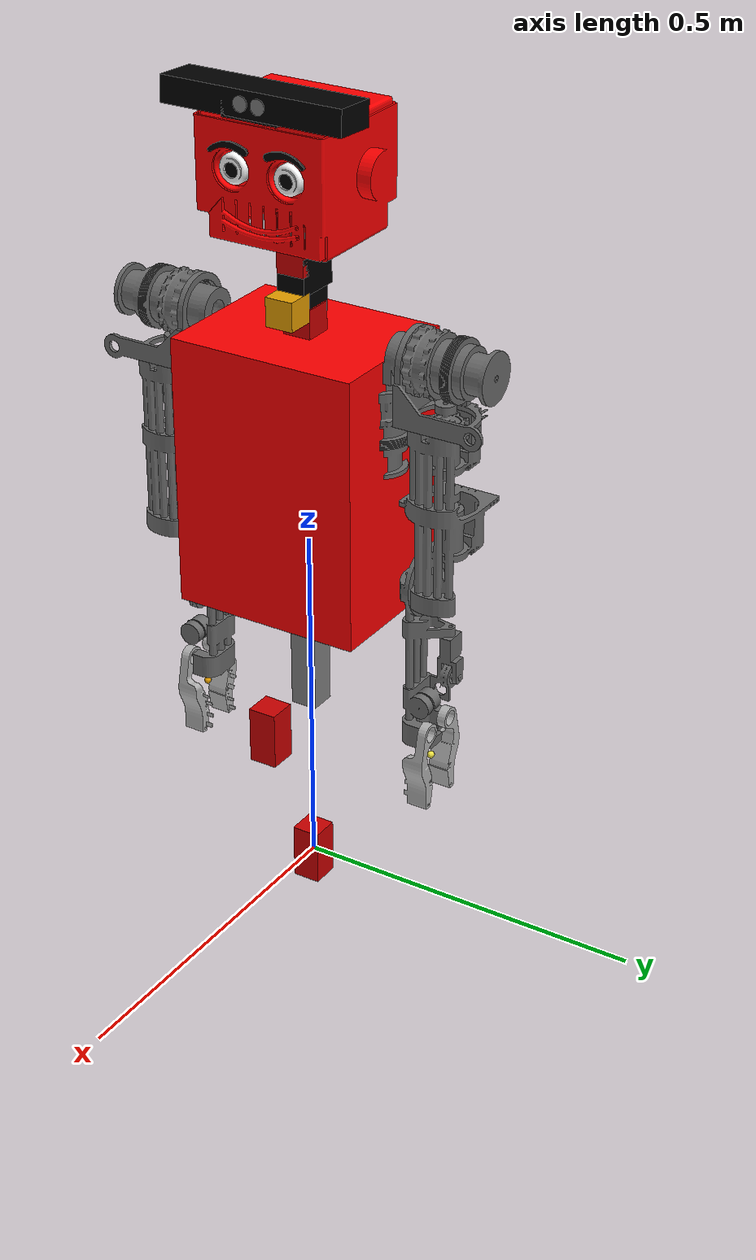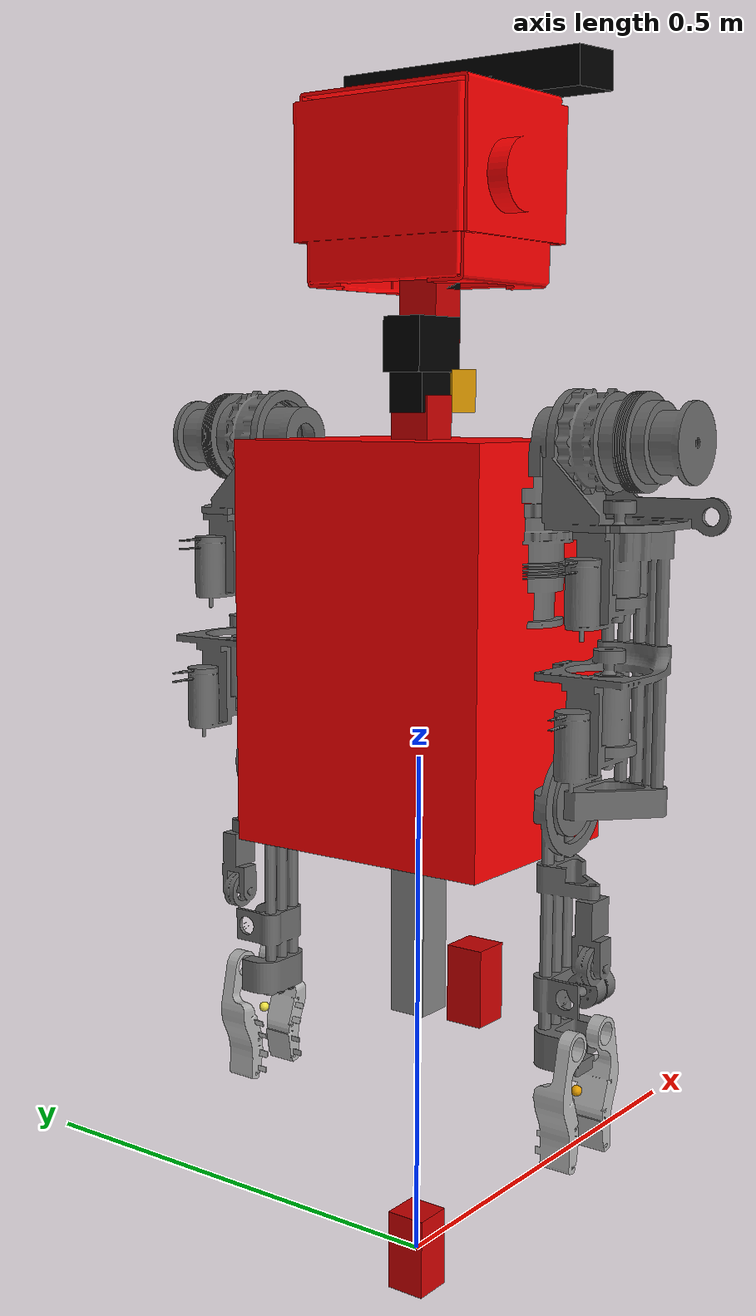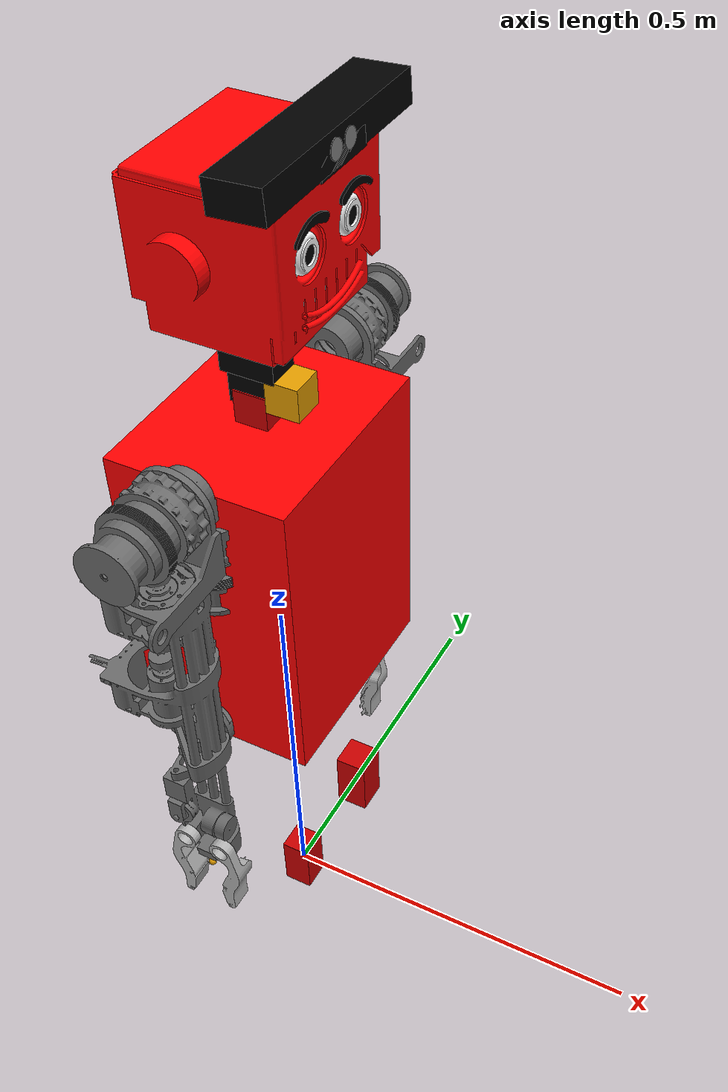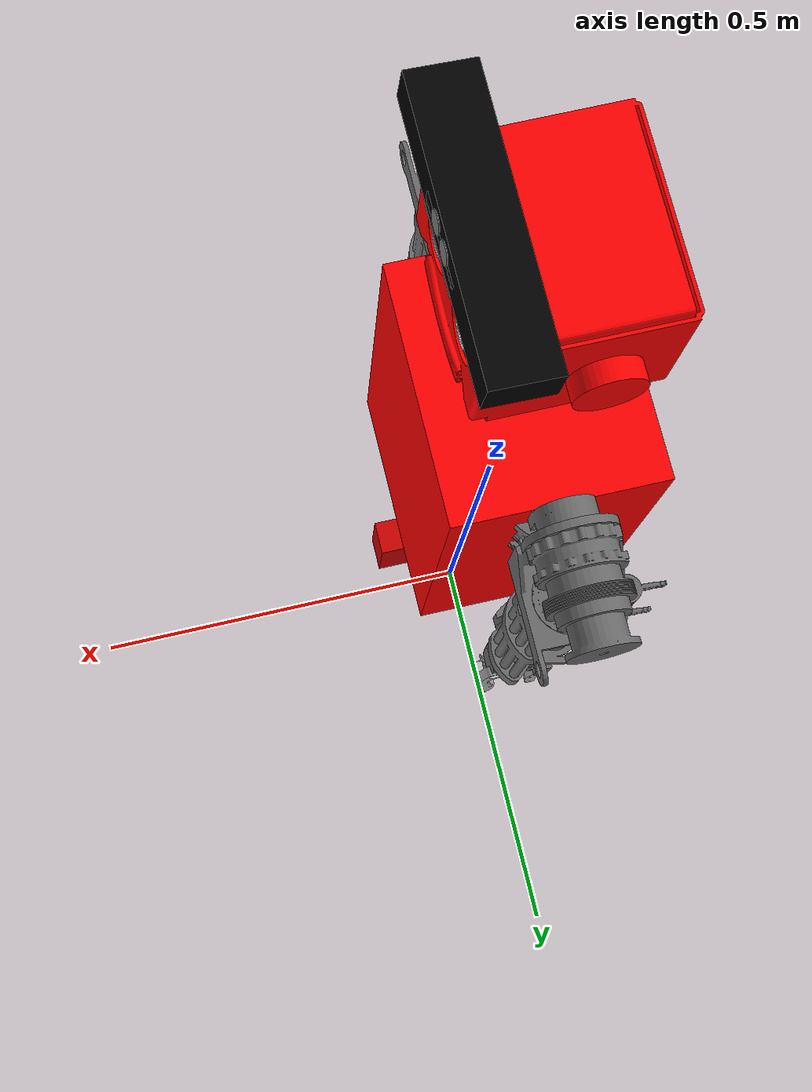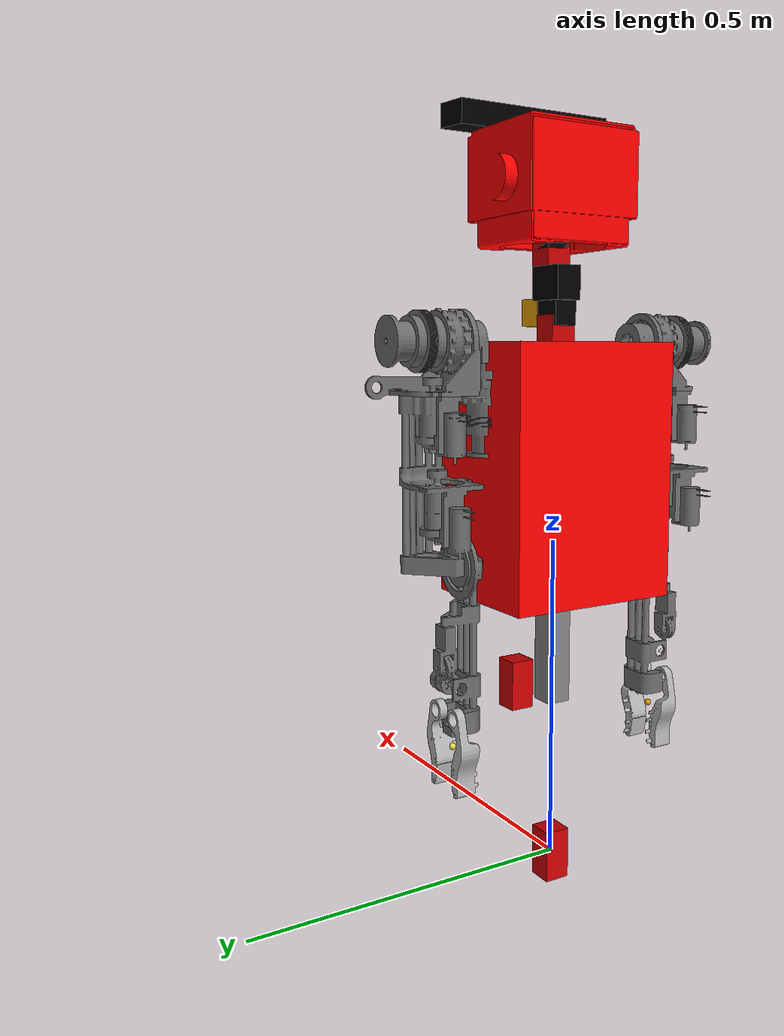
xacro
<?xml version="1.0"?>
<robot xmlns:xacro="http://www.ros.org/wiki/xacro"
       name="jn0" >

    <!-- Johnny-0 (the torso and arms) macro -->
    <xacro:include filename="$(find jn0_description)/robots/jn0.urdf.xacro" />

    <xacro:property name="base_height"  value="0.25" />

    <!-- Defines everything from base_link and up. -->
    <xacro:jn0 base_height="${base_height}" />

    <!-- Fixes the base_link to the world -->
    <link name="world" />
    <joint name="fixed" type="fixed">
      <parent link="world"/>
      <child link="base_link"/>
    </joint>

</robot>

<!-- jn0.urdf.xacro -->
<robot xmlns:xacro="http://www.ros.org/wiki/xacro"
       name="jn0" >

	<!-- The following included files set up definitions of parts of the robot body -->
	<xacro:include filename="$(find irl_common_description)/urdf/common.xacro" />

	<!-- Description files -->
	<xacro:include filename="$(find irl_common_description)/urdf/jn0_torso/box_torso.urdf.xacro" />
	<xacro:include filename="$(find irl_common_description)/urdf/jn0_arm/arm.urdf.xacro" />
	<xacro:include filename="$(find irl_common_description)/urdf/actuators/irl_ptu.urdf.xacro" />
	<xacro:include filename="$(find irl_common_description)/urdf/jn0_head/head.urdf.xacro" />
	<xacro:include filename="$(find irl_common_description)/urdf/sensors/kinect.urdf.xacro" />
	<xacro:include filename="$(find irl_common_description)/urdf/sensors/hokuyo_lx04_laser.urdf.xacro" />

	<!-- generic simulator_gazebo plugins for starting mechanism control, ros time, ros battery -->
	<xacro:include filename="$(find jn0_description)/gazebo/gazebo.urdf.xacro" />
	<!-- materials for visualization -->
	<!-- FIXME  Materials from azimut -->
	<xacro:include filename="$(find irl_common_description)/urdf/materials.urdf.xacro" />

	<!-- TODO screenshots in irl_common_description ? -->
	<!-- TODO ticket wg like robot package
		 {xxx}_common
		   {xxx}_description (urdf, robots, gazebo, meshes)
		   {xxx}_machine
		   {xxx}_msgs
		 -->

    <xacro:macro name="jn0" params="base_height">
        <link name="base_link">
            <visual>
              <origin xyz="0 0 0" rpy="0 0 0" />
              <geometry>
                <box size="0.04 0.04 0.08" />
              </geometry>
              <material name="Red" />
            </visual>
            <collision>
              <origin xyz="0 0 0" rpy="0 0 0" />
            <geometry>
              <box size="1.000 1.000 .001" />
            </geometry>
          </collision>
        </link>

        <xacro:box_torso
            name="torso"
            parent="base_link"
            xyz = "0 0 ${base_height}"
            height       = "0.55"
            stand_width  = "0.038"
            chest_width  = "0.270"
            chest_length = "0.21583"
            chest_height = "0.37921"
            />

        <xacro:irl_ptu
            name="neck"
            parent="torso_top_frame"
            offset_x="0"
            offset_y="0"
            offset_z="0.045"
        />

        <xacro:jn0_head
            name="head"
            parent="neck_top_frame"
            offset_x = "0"
            offset_y = "0"
            offset_z = "0.02"
            />

        <joint name="imv_camera_fixed_joint" type="fixed">
            <origin xyz="0.04 0.00 0.044" rpy="0 0 0"/>
            <parent link="torso_top_frame"/>
            <child  link="imv_camera_link"/>
        </joint>
        <link name="imv_camera_link">
            <inertial>
                <mass value="0.1"/>
                <origin xyz="0 0 0" rpy="0 0 0"/>
                <inertia ixx="0.0001" ixy="0.0" ixz="0.0" iyy="0.0001" iyz="0.0" izz="0.0001"/>
            </inertial>
            <visual>
                <origin xyz="0 0 0" rpy="0 0 0"/>
                <geometry>
                    <box size="0.04 0.04 0.04"/>
                </geometry>
            </visual>
            <collision>
                <origin xyz="0 0 0" rpy="0 0 0"/>
                <geometry>
                    <box size="0.04 0.04 0.04"/>
                </geometry>
            </collision>
        </link>

        <xacro:arm
            parent="torso_link"
            side="R"
            reflect="-1"
            />

        <xacro:arm
            parent="torso_link"
            side="L"
            reflect="1"
            />

        <xacro:kinect_static
            name="openni"
            parent="head_link"
            xyz="0.070 0 0.17" rpy="0 -0.051 0"
            angle="0.0"
            />

        <xacro:hokuyo_lx04_laser_v0
            name="base_laser"
            parent="base"
            ros_topic="base_scan"
            update_rate="20"
            min_angle="-1.57"
            max_angle="1.57" >
            <origin xyz="0.1 0.0 ${base_height}" rpy="0 0 0" />
        </xacro:hokuyo_lx04_laser_v0>

    </xacro:macro>
</robot>

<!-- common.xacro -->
<robot xmlns:xacro="http://www.ros.org/wiki/xacro">

  <xacro:property name="M_PI" value="3.1415926535897931" />
  <xacro:property name="VELOCITY_LIMIT_SCALE" value="0.6" />

</robot>

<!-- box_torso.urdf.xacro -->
<robot xmlns:xacro="http://www.ros.org/wiki/xacro">

	<xacro:include filename="$(find irl_common_description)/urdf/common_geometry.xacro" />

	<xacro:macro name="box_torso" params="name parent xyz height stand_width chest_width chest_height chest_length">

		<!-- "Stand", the bar supporting the torso -->

		<joint name="${name}_stand_fixed_joint" type="fixed">
			<parent link="${parent}"/>
			<child link="${name}_stand_link"/>
			<origin xyz="${xyz}" rpy="0 0 0" />
		</joint>

		<xacro:simple_box
			name = "${name}_stand_link"
			lwh  = "${stand_width} ${stand_width} ${height - chest_height}"
			xyz  = "0 0 ${(height - chest_height) / 2}"
			rpy  = "0 0 0"
			mass = "0.5"
			rviz_rgba = "0.5 0.5 0.5 1"
			material  = "Gazebo/Grey"
		/>

		<joint name="${name}_fixed_joint" type="fixed">
			<parent link="${parent}"/>
			<child link="${name}_link"/>
			<origin xyz="${xyz}" rpy="0 0 0" />
		</joint>

		<!-- Chest represented by a box -->

		<xacro:simple_box
			name = "${name}_link"
			lwh  = "${chest_length} ${chest_width} ${chest_height}"
			xyz  = "0 0 ${height - chest_height/2}"
			rpy  = "0 0 0"
			mass = "0.5"
			rviz_rgba = "1 0 0 1"
			material  = "Gazebo/Red"
			/>

		<joint name="${name}_top_frame_fixed" type="fixed">
			<parent link="${name}_link"/>
			<child link="${name}_top_frame"/>
			<origin xyz="0 0 ${height}" rpy="0 0 0" />
		</joint>

		<link name="${name}_top_frame">
            <inertial>
                <mass value="0.001" />
                <origin xyz="0 0 0" rpy="0 0 0" />
                <inertia ixx="0.0001" ixy="0" ixz="0" iyy="0.000001" iyz="0" izz="0.0001" />
            </inertial>
            <visual>
              <origin xyz="0 0 0" rpy="0 0 0" />
              <geometry>
                <box size="0.04 0.04 0.08" />
              </geometry>
              <material name="Red" />
            </visual>
            <collision>
              <origin xyz="0 0 0" rpy="0 0 0" />
              <geometry>
                <box size=".001 .001 .001" />
              </geometry>
            </collision>
        </link>

        <!-- IMU attached to the frame -->
        <joint name="${name}_imu_fixed" type="fixed">
            <parent link="${name}_top_frame"/>
            <child link="${name}_imu_link"/>
            <origin xyz="0.065 0.0 -0.12" rpy="0 0 -${M_PI/2}"/>
        </joint>
        <link name="${name}_imu_link">
            <visual>
                <origin xyz="0 0 0" rpy="0 0 0"/>
                <geometry>
                    <box size="0.02 0.02 0.02"/>
                </geometry>
            </visual>
        </link>

	</xacro:macro>

</robot>

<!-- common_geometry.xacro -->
<!-- XML namespaces -->
<robot xmlns:xacro="http://www.ros.org/wiki/xacro"
	>

	<!-- TODO check simple_inertial and simple gazebo -->

	<xacro:macro name="simple_inertial" params="mass">
		<inertial>
			<mass value="${mass}" />
			<inertia
				ixx="0.001" ixy="0.0" ixz="0.0"
				iyy="0.001" iyz="0.0"
				izz="0.001" />
			</inertial>
	</xacro:macro>

	<xacro:macro name="simple_gazebo" params="name material">
		<gazebo reference="${name}">
			<material>${material}</material>
			<selfCollide>false</selfCollide>
			<turnGravityOff>true</turnGravityOff>
		</gazebo>
	</xacro:macro>

	<xacro:macro name="simple_color" params="name rgba">
		<material name="${}">
			<color rgba="0.9 0.9 0.9 1.0"/>
		</material>
	</xacro:macro>

	<!-- Generic shape -->

	<xacro:macro name="simple_shape" params="name xyz rpy mass rviz_rgba material *shape">
		<link name="${name}">
			<visual>
				<origin xyz="${xyz}" rpy="${rpy}" />
				<geometry>
					<xacro:insert_block name="shape" />
				</geometry>
				<material name="${name}_color">
					<color rgba="${rviz_rgba}"/>
				</material>
			</visual>
			<collision>
				<origin xyz="${xyz}" rpy="${rpy}" />
				<geometry>
					<xacro:insert_block name="shape" />
				</geometry>
			</collision>
			<xacro:simple_inertial mass="${mass}" />
		</link>
		<xacro:simple_gazebo name="${name}" material="${material}" />
	</xacro:macro>

	<!-- Shapes specializations -->

	<xacro:macro name="simple_box" params="lwh name xyz rpy mass rviz_rgba material">
		<xacro:simple_shape
			name="${name}" xyz="${xyz}" rpy="${rpy}"
			mass="${mass}" rviz_rgba="${rviz_rgba}" material="${material}">
			<box size="${lwh}" />
		</xacro:simple_shape>
	</xacro:macro>

	<xacro:macro name="simple_cylinder" params="radius length name xyz rpy mass rviz_rgba material">
		<xacro:simple_shape
			name="${name}" xyz="${xyz}" rpy="${rpy}"
			mass="${mass}" rviz_rgba="${rviz_rgba}" material="${material}">
			<cylinder radius="${radius}" length="${length}" />
		</xacro:simple_shape>
	</xacro:macro>

	<xacro:macro name="simple_sphere" params="radius name xyz rpy mass rviz_rgba material">
		<xacro:simple_shape
			name="${name}" xyz="${xyz}" rpy="${rpy}"
			mass="${mass}" rviz_rgba="${rviz_rgba}" material="${material}">
			<sphere radius="${radius}" />
		</xacro:simple_shape>
	</xacro:macro>

</robot>

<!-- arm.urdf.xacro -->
<robot xmlns:xacro="http://www.ros.org/wiki/xacro"
	   name="arm" >

	<xacro:include filename="$(find irl_common_description)/urdf/jn0_arm/shoulder/shoulder.urdf.xacro" />
	<xacro:include filename="$(find irl_common_description)/urdf/jn0_arm/upper_arm/upper_arm.urdf.xacro" />
	<xacro:include filename="$(find irl_common_description)/urdf/jn0_arm/forearm/forearm.urdf.xacro" />
	<xacro:include filename="$(find irl_common_description)/urdf/jn0_arm/gripper/gripper.urdf.xacro" />

	<xacro:macro name="arm" params="side reflect parent">

		<xacro:johnny_0_shoulder side="${side}" reflect="${reflect}" parent="${parent}">
			<origin xyz="0 ${reflect*0.11430004} 0.55" rpy="0 0 0" />
		</xacro:johnny_0_shoulder>

		<xacro:johnny_0_upper_arm side="${side}" reflect="${reflect}" parent="${side}_shoulder_tilt_link">
			<origin xyz="0 0.31623 0" rpy="${M_PI/2} 0 0"/>
		</xacro:johnny_0_upper_arm>

		<xacro:johnny_0_forearm side="${side}" reflect="${reflect}" parent="${side}_upper_arm_link">
			<origin xyz="-0.0127 ${-reflect*0.031115} 0" rpy="${-M_PI/2} 0 0" />
		</xacro:johnny_0_forearm>

		<xacro:johnny_0_gripper side="${side}" reflect="${reflect}" parent="${side}_forearm_link">
			<!--origin xyz="0 0 0" rpy="0 0 0" /-->
		</xacro:johnny_0_gripper>

	</xacro:macro>
</robot>
<!--/(irl_common_description)-->

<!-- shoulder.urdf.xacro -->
<!-- XML namespaces -->
<robot xmlns:xacro="http://www.ros.org/wiki/xacro">

	<!-- Things that are needed only for Gazebo (not the physical robot).  These include
	sensor and controller plugin specifications -->
	<xacro:include filename="$(find irl_common_description)/urdf/jn0_arm/shoulder/shoulder.gazebo.xacro" />
	<xacro:include filename="$(find irl_common_description)/urdf/jn0_arm/shoulder/shoulder.transmission.xacro" />
	<xacro:include filename="$(find irl_common_description)/urdf/common.xacro" />

	<!-- ============================   Shoulder   ============================ -->

	<xacro:macro name="johnny_0_shoulder" params="side parent reflect *origin">

		<!-- Shoulder fixed joint -->

		<joint name="${side}_shoulder_fixed_joint" type="fixed">
			<xacro:insert_block name="origin" />
			<parent link="${parent}"/>
			<child link="${side}_shoulder_fixed_link"/>
		</joint>

		<!-- Shoulder fixed link -->

		<link name="${side}_shoulder_fixed_link">
			<inertial>
				<mass value="1.19220892" />
				<origin xyz="-0.00000272 -0.01235088 -0.09031596" rpy="0 0 0"/>
				<inertia  	ixx="0.00337306" 	ixy="0.00000002"  	ixz="0.0"
										iyy="0.00266910" 	iyz="-0.00086743"
														izz="0.00211447" />
			</inertial>

			<visual>
				<origin xyz="0 0 0" rpy="0 0 0" />
				<geometry name="${side}_shoulder_fixed_link_visual_geom">
					<mesh filename="package://irl_common_description/meshes/jn0_arm/shoulder/${side}_shoulder_fixed_link.dae"  />
				</geometry>
			</visual>

			<collision>
				<origin xyz="0 0 0" rpy="0 0 0 " />
				<geometry name="${side}_shoulder_fixed_link_collision_geom">
					<mesh filename="package://irl_common_description/meshes/jn0_arm/shoulder/${side}_shoulder_fixed_link.stl"  />
				</geometry>
			</collision>
		</link>

		<!-- Shoulder revolute joint - axis 1 : pan -->

		<joint name="${side}_shoulder_pan_joint" type="revolute">
		<!--joint name="${side}_shoulder_pan_joint" type="continuous"-->
		<!--joint name="${side}_shoulder_pan_joint" type="fixed"-->
			<axis xyz="0 0 1" />
			<origin xyz="0 0 0" rpy="0 0 0" />
			<parent link="${side}_shoulder_fixed_link"/>
			<child link="${side}_shoulder_pan_link"/>

			<!-- This parameters have to be modified -->
			<limit effort="10" velocity="2.0" lower="${-M_PI/2}" upper="${M_PI/2}" />
            <dynamics damping="0.1"/>
			<!--safety_controller k_position="100" k_velocity="10" soft_lower_limit="${-M_PI/2+0.15}" soft_upper_limit="${M_PI/2-0.15}"  /-->
		</joint>

		<!-- Shoulder link - First mobile part of the shoulder (pan) -->

		<link name="${side}_shoulder_pan_link">
			<inertial>
				<mass value="1.5029103" />
				<origin xyz="-0.00000458 0.03120604 -0.02992782" rpy="0 0 0"/>
				<inertia  	ixx="0.00431624" 	ixy="0.00000015"  	ixz="-0.00000011"
										iyy="0.00240441" 	iyz="0.00139880"
														izz="0.00251981" />
			</inertial>

			<visual>
				<origin xyz="0 0 0" rpy="0 0 0"/>
				<geometry name="${side}_shoulder_pan_link_visual_geom">
					<mesh filename="package://irl_common_description/meshes/jn0_arm/shoulder/${side}_shoulder_pan_link.dae"  />
				</geometry>
			</visual>

			<collision>
				<origin xyz="0 0 0" rpy="0 0 0"/>
				<geometry name="${side}_shoulder_pan_link_collision_geom">
					<mesh filename="package://irl_common_description/meshes/jn0_arm/shoulder/${side}_shoulder_pan_link.stl"  />
				</geometry>
			</collision>
		</link>

		<!-- Shoulder revolute joint - axis 2 : tilt -->

		<joint name="${side}_shoulder_tilt_joint" type="revolute">
			<axis xyz="0 0 1" />
			<origin xyz="0 ${reflect*0.09471141} 0" rpy="${-M_PI/2} 0 0"/>
			<parent link="${side}_shoulder_pan_link"/>
			<child link="${side}_shoulder_tilt_link"/>

			<!-- This parameters have to be modified -->
			<limit effort="20" velocity="1.0" lower="${-M_PI}" upper="${M_PI/2}" />
            <dynamics damping="0.1"/>
		</joint>

		<!-- Shoulder link -->
		<link name="${side}_shoulder_tilt_link">
			<inertial>
				<mass value="1.77083411" />
				<origin xyz="-0.00690346 0.03925534 0.00828557" rpy="0 0 0"/>
				<inertia  	ixx="0.00639093" 	ixy="-0.00121012"  ixz="0.00025902"
										iyy="0.00353925" 	iyz="-0.00029889"
														izz="0.00626044" />
			</inertial>

			<visual>
				<origin xyz="0 0 0" rpy="0 0 0"/>
				<geometry name="${side}_shoulder_tilt_link_visual_geom">
					<mesh filename="package://irl_common_description/meshes/jn0_arm/shoulder/${side}_shoulder_tilt_link.dae"  />
				</geometry>
			</visual>

			<collision>
				<origin xyz="0 0 0" rpy="0 0 0"/>
				<geometry name="${side}_shoulder_tilt_link_collision_geom">
					<mesh filename="package://irl_common_description/meshes/jn0_arm/shoulder/${side}_shoulder_tilt_link.stl"  />
				</geometry>
			</collision>
		</link>

		<!-- extensions -->

		<xacro:johnny_0_shoulder_transmission reflect="${reflect}" side="${side}" />

	</xacro:macro>

</robot>

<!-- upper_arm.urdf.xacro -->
<!-- XML namespaces -->
<robot xmlns:xacro="http://www.ros.org/wiki/xacro">

	<!-- Things that are needed only for Gazebo (not the physical robot).  These include
	sensor and controller plugin specifications -->
	<xacro:include filename="$(find irl_common_description)/urdf/jn0_arm/upper_arm/upper_arm.gazebo.xacro" />
	<xacro:include filename="$(find irl_common_description)/urdf/jn0_arm/upper_arm/upper_arm.transmission.xacro" />
	<xacro:include filename="$(find irl_common_description)/urdf/common.xacro" />

	<!-- ============================   Upper arm   ============================ -->

	<xacro:macro name="johnny_0_upper_arm" params="side parent reflect *origin">

		<!-- Shoulder revolute joint - axis 3 : roll -->

		<joint name="${side}_shoulder_roll_joint" type="revolute">
			<axis xyz="0 0 1"/>
			<xacro:insert_block name="origin" />

			<parent link="${parent}"/>
			<child link="${side}_upper_arm_link"/>

			<!-- This parameters have to be modified -->
			<limit effort="10" velocity="2.0" lower="${-M_PI/2}" upper="${M_PI/2}"/>
            <dynamics damping="0.1"/>
		</joint>

		<!-- Upper arm link -->

		<link name="${side}_upper_arm_link">
			<inertial>
				<mass value="3.18827858" />
				<origin xyz="0.01378839 -0.00550664 0.10178050" rpy="0 0 0"/>
				<inertia  	ixx="0.01926870" 	ixy="0.00025868"  	ixz="-0.00128573"
										iyy="0.01935202" 	iyz="0.00117889"
														izz="0.00721747" />
			</inertial>

			<visual>
				<origin xyz="0 0 0" rpy="${M_PI} 0 0"/>
				<geometry name="${side}_upper_arm_link_visual_geom">
					<mesh filename="package://irl_common_description/meshes/jn0_arm/upper_arm/${side}_upper_arm_link.dae"  />
				</geometry>
			</visual>

			<collision>
				<origin xyz="0 0 0" rpy="0 0 0"/>
				<geometry name="${side}_upper_arm_link_collision_geom">
					<mesh filename="package://irl_common_description/meshes/jn0_arm/upper_arm/${side}_upper_arm_link.stl"  />
				</geometry>
			</collision>
		</link>

		<!-- extensions -->
		<xacro:johnny_0_upper_arm_transmission side="${side}" reflect="${reflect}" />

	</xacro:macro>

</robot>

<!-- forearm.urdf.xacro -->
<!-- XML namespaces -->
<robot xmlns:xacro="http://www.ros.org/wiki/xacro">

	<!-- Things that are needed only for Gazebo (not the physical robot).  These include
	sensor and controller plugin specifications -->
	<xacro:include filename="$(find irl_common_description)/urdf/jn0_arm/forearm/forearm.gazebo.xacro" />
	<xacro:include filename="$(find irl_common_description)/urdf/jn0_arm/forearm/forearm.transmission.xacro" />
	<xacro:include filename="$(find irl_common_description)/urdf/common.xacro" />

	<!-- ============================   forearm   ============================ -->

	<xacro:macro name="johnny_0_forearm" params="side parent reflect *origin">

		<!-- Elbow revolute joint : tilt -->

		<!--joint name="${side}_elbow_tilt_joint" type="fixed"-->
		<joint name="${side}_elbow_tilt_joint" type="revolute">
		<!--joint name="${side}_elbow_tilt_joint" type="continuous"-->
			<axis xyz="0 0 1"/>
			<xacro:insert_block name="origin" />
			<parent link="${parent}"/>
			<child link="${side}_forearm_link"/>

			<!-- This parameters have to be modified -->
			<limit effort="10" velocity="1.0" lower="${-43*M_PI/180}" upper="${70*M_PI/180}" />
            <dynamics damping="0.1"/>
		</joint>

		<link name="${side}_forearm_link">
			<inertial>
				<mass value="1.34823795" />
				<origin xyz="0.00109577 0.12665702 0.00567457" rpy="0 0 0"/>
				<inertia  ixx="0.01000680" 	ixy="0.00014372"  	ixz="-0.00008578"
										iyy="0.00168430" 	iyz="0.00086209"
														izz="0.00967320" />
			</inertial>

			<visual>
				<origin xyz="0 0 0" rpy="0 0 0"/>
				<geometry name="${side}_forearm_link_visual_geom">
					<mesh filename="package://irl_common_description/meshes/jn0_arm/forearm/${side}_forearm_link.dae"  />
				</geometry>
			</visual>

			<collision>
				<origin xyz="0 0 0" rpy="0 0 0"/>
				<geometry name="${side}_forearm_link_collision_geom">
					<!--mesh filename="package://irl_common_description/meshes/arm/forearm/${side}_forearm_link.stl"  /-->
					<sphere radius="0.01" />
				</geometry>
			</collision>
		</link>

		<!-- extensions -->
		<xacro:johnny_0_forearm_transmission side="${side}" />

	</xacro:macro>

</robot>

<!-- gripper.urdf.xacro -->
<!-- XML namespaces -->
<robot xmlns:xacro="http://www.ros.org/wiki/xacro">

	<!-- Things that are needed only for Gazebo (not the physical robot).  These include
	sensor and controller plugin specifications -->
	<xacro:include filename="$(find irl_common_description)/urdf/jn0_arm/gripper/gripper.gazebo.xacro" />
	<xacro:include filename="$(find irl_common_description)/urdf/jn0_arm/gripper/gripper.transmission.xacro" />
	<xacro:include filename="$(find irl_common_description)/urdf/common.xacro" />

	<!-- ============================   gripper   ============================ -->

	<xacro:macro name="johnny_0_gripper" params="side parent reflect">
	<!--xacro:macro name="johnny_0_gripper" params="side parent reflect *origin"-->

		<!-- Gripper up revolute joint -->

		<joint name="${side}_gripper_up_joint" type="revolute">
		<!--joint name="${side}_gripper_up_joint" type="fixed"-->
			<axis xyz="0 0 1"/>
			<origin xyz="0.0254 0.21844 ${reflect*0.01039}" rpy="0 0 ${M_PI/2}"/>
			<parent link="${parent}"/>
			<child link="${side}_gripper_up_link"/>

			<!-- This parameters have to be modified -->
			<limit effort="30" velocity="2.0" lower="${-M_PI/2}" upper="${M_PI/10}" />
			<!--safety_controller k_position="20" k_velocity="10" soft_upper_limit="1" soft_lower_limit="-1" /-->
		</joint>

		<!-- Gripper up link -->

		<link name="${side}_gripper_up_link">
			<inertial>
				<mass value="0.21180172" />
				<origin xyz="0.05877696 0.00139214 -0.00602003" rpy="0 0 0"/>
				<inertia  	ixx="0.00003889"    ixy="0.00000916"    ixz="-0.00003123"
							                    iyy="0.00026591"    iyz="0.00000146"
												                    izz="0.00026384" />
			</inertial>

			<visual>
				<origin xyz="0 0 0" rpy="0 0 0" />
				<geometry name="${side}_gripper_up_link_visual_geom">
					<mesh filename="package://irl_common_description/meshes/jn0_arm/gripper/${side}_gripper_up.dae"  />
				</geometry>
			</visual>

			<collision>
				<origin xyz="0 0 0" rpy="0 0 0" />
				<geometry name="${side}_gripper_up_link_collision_geom">
					<!--mesh filename="package://irl_common_description/meshes/jn0_arm/gripper/${side}_gripper_up.stl"  /-->
					<sphere radius="0.01" />
				</geometry>
			</collision>
		</link>

		<!-- Gripper down revolute joint -->

		<joint name="${side}_gripper_down_joint" type="revolute">
		<!--joint name="${side}_gripper_down_joint" type="fixed"-->
			<axis xyz="0 0 1"/>
			<origin xyz="-0.0254 0.21844 ${reflect*0.01039}" rpy="${M_PI} 0 ${M_PI/2}"/>
			<parent link="${parent}"/>
			<child link="${side}_gripper_down_link"/>

			<!-- This parameters have to be modified -->
			<limit effort="30" velocity="2.0" lower="${-M_PI/2}" upper="${M_PI/10}" />
			<!--safety_controller k_position="20" k_velocity="10" soft_upper_limit="1" soft_lower_limit="-1" /-->
		</joint>

		<!-- Gripper down link -->

		<link name="${side}_gripper_down_link">
			<inertial>
				<mass value="0.19772070" />
				<origin xyz="0.06212355 0.00111307 0.00727599" rpy="0 0 0"/>
				<inertia  	ixx="0.00003889"    ixy="0.00000916"    ixz="-0.00003123"
							                    iyy="0.00026591"    iyz="0.00000146"
												                    izz="0.00026384" />
			</inertial>

			<visual>
				<origin xyz="0 0 0" rpy="0 0 0" />
				<geometry name="${side}_gripper_down_link_visual_geom">
					<mesh filename="package://irl_common_description/meshes/jn0_arm/gripper/${side}_gripper_down.dae"  />
				</geometry>
			</visual>

			<collision>
				<origin xyz="0 0 0" rpy="0 0 0" />
				<geometry name="${side}_gripper_down_link_collision_geom">
					<!--mesh filename="package://irl_common_description/meshes/jn0_arm/gripper/${side}_gripper_down.stl"  /-->
					<sphere radius="0.01" />
				</geometry>
			</collision>
		</link>

		<!-- Tool Frame -->

		<joint name="${side}_frame_tool_joint" type="fixed">
		<!--joint name="${side}_gripper_down_joint" type="fixed"-->
			<origin xyz="0 0.2686564 ${reflect*0.007977}" rpy="${M_PI/2} 0 ${M_PI/2}"/>
			<parent link="${parent}"/>
			<child link="${side}_frame_tool_link"/>
		</joint>

		<!-- Gripper down link -->

		<link name="${side}_frame_tool_link">
			<inertial>
				<mass value="0.01" />
				<origin xyz="0 0 0" rpy="0 0 0"/>
				<inertia  ixx="0" ixy="0"  ixz="0"
					iyy="0" iyz="0"
					izz="0" />
			</inertial>

			<visual>
				<origin xyz="0 0 0" rpy="0 0 0" />
				<geometry name="${side}_frame_tool_link_visual_geom">
					 <sphere radius="0.005" />

				</geometry>
			</visual>

		</link>

		<!-- The following is only for the kinematic stuff -->

		<joint name="${side}_frame_tool_x_joint" type="continuous">
		<!--joint name="${side}_gripper_down_joint" type="fixed"-->
			<axis xyz="1 0 0"/>
			<origin xyz="0 0 0" rpy="0 0 0"/>
			<parent link="${side}_frame_tool_link"/>
			<child link="${side}_frame_tool_x_link"/>
		</joint>

		<!-- Gripper down link -->

		<link name="${side}_frame_tool_x_link">
			<inertial>
				<mass value="0.01" />
				<origin xyz="0 0 0" rpy="0 0 0"/>
				<inertia  ixx="0" ixy="0"  ixz="0"
					iyy="0" iyz="0"
					izz="0" />
			</inertial>

			<visual>
				<origin xyz="0 0 0" rpy="0 0 0" />
				<geometry name="${side}_frame_tool_x_link_visual_geom">
					 <sphere radius="0.005" />

				</geometry>
			</visual>

		</link>

		<joint name="${side}_frame_tool_y_joint" type="continuous">
		<!--joint name="${side}_gripper_down_joint" type="fixed"-->
			<axis xyz="0 1 0"/>
			<origin xyz="0 0 0" rpy="0 0 0"/>
			<parent link="${side}_frame_tool_x_link"/>
			<child link="${side}_frame_tool_y_link"/>
		</joint>

		<!-- Gripper down link -->

		<link name="${side}_frame_tool_y_link">
			<inertial>
				<mass value="0.01" />
				<origin xyz="0 0 0" rpy="0 0 0"/>
				<inertia  ixx="0" ixy="0"  ixz="0"
					iyy="0" iyz="0"
					izz="0" />
			</inertial>

			<visual>
				<origin xyz="0 0 0" rpy="0 0 0" />
				<geometry name="${side}_frame_tool_y_link_visual_geom">
					 <sphere radius="0.005" />

				</geometry>
			</visual>

		</link>

		<joint name="${side}_frame_tool_z_joint" type="continuous">
		<!--joint name="${side}_gripper_down_joint" type="fixed"-->
			<axis xyz="0 0 1"/>
			<origin xyz="0 0 0" rpy="0 0 0"/>
			<parent link="${side}_frame_tool_y_link"/>
			<child link="${side}_frame_tool_z_link"/>
		</joint>

		<!-- Gripper down link -->

		<link name="${side}_frame_tool_z_link">
			<inertial>
				<mass value="0.01" />
				<origin xyz="0 0 0" rpy="0 0 0"/>
				<inertia  ixx="0" ixy="0"  ixz="0"
					iyy="0" iyz="0"
					izz="0" />
			</inertial>

			<visual>
				<origin xyz="0 0 0" rpy="0 0 0" />
				<geometry name="${side}_frame_tool_z_link_visual_geom">
					 <sphere radius="0.005" />

				</geometry>
			</visual>
		</link>

		<!-- extensions -->
		<xacro:johnny_0_gripper_transmission side="${side}" />

	</xacro:macro>

</robot>

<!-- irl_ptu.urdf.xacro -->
<robot xmlns:xacro="http://www.ros.org/wiki/xacro">

	<xacro:include filename="$(find irl_common_description)/urdf/common_geometry.xacro" />
	<xacro:include filename="$(find irl_common_description)/urdf/actuators/irl_ptu.transmission.xacro" />

    <!-- Similar to the Directed Perception definition, but with Dynamixel
         actuators. -->

	<xacro:macro name="irl_ptu" params="name parent offset_x offset_y offset_z">

		<joint name="${name}_fixed_joint" type="fixed">
			<parent link="${parent}"/>
			<child link="${name}_pan_link"/>
			<origin xyz="${offset_x} ${offset_y} ${offset_z}" rpy="0 0 0" />
		</joint>

        <xacro:simple_box
            name="${name}_pan_link"
            lwh="0.050 0.036 0.041"
            xyz="0 0 0"
            rpy="0 0 0"
            mass="0.100"
            rviz_rgba="0 0 0 1"
            material="black"
        />

		<joint name="${name}_pan_joint" type="revolute">
			<parent link="${name}_pan_link"/>
			<child link="${name}_tilt_link"/>
			<origin xyz="0 0 0.041" rpy="0 0 0" />
			<axis xyz="0 0 1" rpy="0 0 0"/>
            <limit effort="100" velocity="2.0" lower="${-M_PI/2}" upper="${M_PI/2}" />
		</joint>

        <xacro:simple_box
            name="${name}_tilt_link"
            lwh="0.065 0.040 0.050"
            xyz="0 0 0"
            rpy="0 0 0"
            mass="0.100"
            rviz_rgba="0 0 0 1"
            material="black"
        />

		<joint name="${name}_tilt_joint" type="revolute">
			<parent link="${name}_tilt_link"/>
			<child link="${name}_bracket_link"/>
            <origin xyz="0.013 0 0.025" rpy="0 0 0" />
			<axis xyz="0 1 0" rpy="0 0 0"/>
			<limit effort="100" velocity="2.0" lower="-0.170" upper="0.7854" />
		</joint>

        <xacro:simple_box
            name="${name}_bracket_link"
            lwh="0.04 0.04 0.01"
            xyz="0 0 0.030"
            rpy="0 0 0"
            mass="0.100"
            rviz_rgba="0 0 0 1"
            material="black"
        />

		<joint name="${name}_top_frame_fixed" type="fixed">
			<parent link="${name}_bracket_link"/>
			<child link="${name}_top_frame"/>
			<origin xyz="0 0 0.016" rpy="0 0 0" />
		</joint>
		<link name="${name}_top_frame">
            <inertial>
                <mass value="0.001" />
                <origin xyz="0 0 0" rpy="0 0 0" />
                <inertia ixx="0.0001" ixy="0" ixz="0" iyy="0.000001" iyz="0" izz="0.0001" />
            </inertial>
            <visual>
              <origin xyz="0 0 0" rpy="0 0 0" />
              <geometry>
                <box size="0.04 0.04 0.08" />
              </geometry>
              <material name="Red" />
            </visual>
            <collision>
              <origin xyz="0 0 0" rpy="0 0 0" />
              <geometry>
                <box size=".001 .001 .001" />
              </geometry>
            </collision>
        </link>

        <!-- Ignored by CAN manager, used in Gazebo -->
		<xacro:irl_ptu_pan_transmission name="${name}_pan"/>
		<xacro:irl_ptu_tilt_transmission name="${name}_tilt"/>

    </xacro:macro>

</robot>

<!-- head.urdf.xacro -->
<robot xmlns:xacro="http://www.ros.org/wiki/xacro">

	<xacro:include filename="$(find irl_common_description)/urdf/common_geometry.xacro" />

	<xacro:macro name="jn0_head" params="name parent offset_x offset_y offset_z">

		<joint name="${name}_fixed_joint" type="fixed">
			<parent link="${parent}"/>
			<child link="${name}_link"/>
			<origin xyz="${offset_x} ${offset_y} ${offset_z}" rpy="0 0 0" />
		</joint>
		<xacro:_jn0_head_link
			name="${name}_link"
			xyz="0.04 0 0.08"
			rpy="${M_PI/2} 0 ${M_PI/2}"
			mass="0.5"
			mesh="head"
			/>

		<xacro:_jn0_head_eye name="${name}_l_eye" parent="${name}_link" reflect="1" />
		<xacro:_jn0_head_eye name="${name}_r_eye" parent="${name}_link" reflect="-1"/>

	</xacro:macro>

	<xacro:macro name="_jn0_head_eye" params="name parent reflect">

		<joint name="${name}" type="fixed">
			<parent link="${parent}"/>
			<child link="${name}_link"/>
			<origin xyz="0.06 ${reflect*0.04} 0.09" rpy="0 0 0" />
		</joint>
		<xacro:_jn0_head_link
			name="${name}_link"
			xyz="0 -0.02 0.02"
			rpy="0 ${M_PI/2} 0"
			mass="0.001"
			mesh="eye"
			/>

		<joint name="${name}_pupil" type="fixed">
			<parent link="${name}_link"/>
			<child link="${name}_pupil_link"/>
			<origin xyz="0 0 0" rpy="0 0 0" />
		</joint>
		<xacro:simple_cylinder
			name="${name}_pupil_link"
			mass="0.001"
			xyz="0.02 0 0"
			rpy="0 ${M_PI/2} 0"
			radius="0.01"
			length="0.005"
			rviz_rgba="0 0 0 1"
			material="Gazebo/Black"
			/>

		<joint name="${name}_eyebrow" type="fixed">
			<parent link="${name}_link"/>
			<child link="${name}_eyebrow_link"/>
			<!-- yaw = 0 when reflect = 1, M_PI when reflect = -1 !  -->
			<origin xyz="0.028 0 0.035" rpy="0 0 ${M_PI*(reflect-1)/2}" />
		</joint>
		<xacro:_jn0_head_link
			name="${name}_eyebrow_link"
			xyz="0.0015 0.03 -0.015"
			rpy="${M_PI/2} 0 ${-M_PI/2}"
			mass="0.001"
			mesh="eyebrow"
			/>

	</xacro:macro>

	<xacro:macro name="_jn0_head_link" params="name mass xyz rpy mesh">
		<link name="${name}">
			<xacro:simple_inertial mass="${mass}"/>
			<visual>
				<origin xyz="${xyz}" rpy="${rpy}" />
				<geometry>
					<mesh filename="package://irl_common_description/meshes/jn0_head/${mesh}.dae" />
				</geometry>
			</visual>
			<collision>
				<origin xyz="${xyz}" rpy="${rpy}" />
				<geometry>
					<mesh filename="package://irl_common_description/meshes/jn0_head/${mesh}.STL" />
				</geometry>
			</collision>
		</link>
	</xacro:macro>

</robot>

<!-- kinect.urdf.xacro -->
<!-- Author : Cyril Lugan -->

<robot xmlns:xacro="http://www.ros.org/wiki/xacro">

	<xacro:include filename="$(find irl_common_description)/urdf/common.xacro" />

	<!-- Macro for a static kinect (fixed camera joint) -->
	<xacro:macro name="kinect_static" params="name parent xyz rpy angle">

		<xacro:kinect_links
			name="${name}" parent="${parent}"
			xyz="${xyz}" rpy="${rpy}"
			/>

		<joint name="${name}_camera_joint" type="fixed">
			<origin xyz="0 0 -0.01" rpy="0 ${angle} 0" />
			<parent link="${name}_base_link"/>
			<child link="${name}_camera_link"/>
		</joint>

	</xacro:macro>

	<xacro:macro name="kinect" params="name parent xyz rpy">

		<xacro:kinect_links
			name="${name}" parent="${parent}"
			xyz="${xyz}" rpy="${rpy}"
			/>

		<joint name="${name}_camera_joint" type="revolute">
			<axis xyz="0 -1 0"/>
			<!--
				According to open kinect
				+31 degrees (up) and -31 degrees (down)
			-->
			<limit lower="${-0.541}" upper="${0.541}" effort="15" velocity="5" /> <!-- random effort/velocity -->
			<origin xyz="0 0 0.02" rpy="0 0 0" />
			<parent link="${name}_base_link"/>
			<child link="${name}_camera_link"/>
		</joint>

	</xacro:macro>

	<!-- (private) A grey cylinder to display an optical frame in rviz -->
	<xacro:macro name="kinect_optical_frame" params="name">
		<link name="${name}">
			<inertial>
				<mass value="0.001" />
				<origin xyz="0 0 0" rpy="0 0 0" />
				<inertia ixx="0.0001" ixy="0" ixz="0" iyy="0.000001" iyz="0" izz="0.0001" />
			</inertial>
			<visual>
				<origin xyz="0 0 0.001" rpy="0 0 0" />
				<geometry>
					<cylinder length="0.06" radius="0.01" />
				</geometry>
				<material name="OpticalGrey">
					<color rgba="0.5 0.5 0.5 1.0"/>
				</material>
			</visual>
			<collision>
				<origin xyz="0 0 0" rpy="0 0 0" />
				<geometry>
					<cylinder length="0.06" radius="0.01" />
				</geometry>
			</collision>
		</link>
	</xacro:macro>

	<!-- (private) Everything but the camera joint -->
	<xacro:macro name="kinect_links" params="name parent xyz rpy">

		<joint name="${name}_base_joint" type="fixed">
			<origin xyz="${xyz}" rpy="${rpy}" />
			<parent link="${parent}"/>
			<child link="${name}_base_link"/>
		</joint>

		<link name="${name}_base_link">
			<inertial>
				<mass value="0.001" />
				<origin xyz="0 0 0" rpy="0 0 0" />
				<inertia ixx="0.0001" ixy="0" ixz="0" iyy="0.000001" iyz="0" izz="0.0001" />
			</inertial>
			<visual>
				<geometry>
					<box size="0.06 0.08 0.02" />
				</geometry>
				<material name="KinectBlack">
					<color rgba="0 0 0 1.0"/>
				</material>
			</visual>
			<collision>
				<origin xyz="0 0 0" rpy="0 0 0" />
				<geometry>
					<box size="0.06 0.08 0.02" />
				</geometry>
			</collision>
		</link>

		<!-- Missing joint here, defined in kinect.urdf.xacro -->

		<link name="${name}_camera_link">
			<inertial>
				<mass value="0.001" />
				<origin xyz="0 0 0" rpy="0 0 0" />
				<inertia ixx="0.0001" ixy="0" ixz="0" iyy="0.000001" iyz="0" izz="0.0001" />
			</inertial>
			<visual>
				<origin xyz="0 0 0.02" rpy="0 0 0" />
				<geometry>
					<box size="0.06 0.26 0.035" />
				</geometry>
				<material name="KinectBlack">
					<color rgba="0 0 0 1.0"/>
				</material>
			</visual>
			<collision>
				<origin xyz="0 0 0" rpy="0 0 0" />
				<geometry>
					<box size="0.06 0.26 0.035" />
				</geometry>
			</collision>
		</link>

		<xacro:kinect_optical_frame name="${name}_depth_optical_frame"/>
		<xacro:kinect_optical_frame name="${name}_rgb_optical_frame"/>

		<joint name="${name}_depth_joint" type="fixed">
			<origin xyz="0 0.012 0.02" rpy="0 0 0" />
			<parent link="${name}_camera_link" />
			<child link="${name}_depth_frame" />
		</joint>

        <link name="${name}_depth_frame"/>

		<joint name="${name}_depth_optical_joint" type="fixed">
			<origin xyz="0 0 0" rpy="${-M_PI/2} 0 ${-M_PI/2}" />
			<parent link="${name}_depth_frame" />
			<child link="${name}_depth_optical_frame" />
		</joint>

		<joint name="${name}_rgb_joint" type="fixed">
			<origin xyz="0 -0.025 0" rpy="0 0 0" />
			<parent link="${name}_depth_frame" />
			<child link="${name}_rgb_frame" />
		</joint>

        <link name="${name}_rgb_frame"/>

		<joint name="${name}_rgb_optical_joint" type="fixed">
            <origin xyz="0 0 0" rpy="${-M_PI/2} 0 ${-M_PI/2}"/>
			<parent link="${name}_rgb_frame"/>
			<child link="${name}_rgb_optical_frame"/>
		</joint>

	</xacro:macro>

</robot>

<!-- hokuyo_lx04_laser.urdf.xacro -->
<robot xmlns:xacro="http://www.ros.org/wiki/xacro">

    <xacro:include filename="$(find irl_common_description)/urdf/sensors/hokuyo_lx04_laser.gazebo.xacro" />
    <xacro:macro name="hokuyo_lx04_laser_v0" params="name parent *origin ros_topic update_rate min_angle max_angle">
    <joint name="${name}_joint" type="fixed">
      <axis xyz="0 1 0" />
      <xacro:insert_block name="origin" />
      <parent link="${parent}_link"/>
      <child link="${name}_link"/>
    </joint>
    <link name="${name}_link" type="laser">
      <inertial>
        <mass value="0.001" />
        <origin xyz="0 0 0" rpy="0 0 0" />
        <inertia ixx="0.0001" ixy="0" ixz="0" iyy="0.000001" iyz="0" izz="0.0001" />
      </inertial>
      <visual>
        <origin xyz="0 0 0" rpy="0 0 0" />
        <geometry>
          <box size="0.04 0.04 0.08" />
        </geometry>
        <material name="Red" />
      </visual>
      <collision>
        <origin xyz="0 0 0" rpy="0 0 0" />
        <geometry>
          <box size=".001 .001 .001" />
        </geometry>
      </collision>
    </link>
    <!-- gazebo extensions  -->
    <xacro:hokuyo_lx04_laser_gazebo_v0 name="${name}" ros_topic="${ros_topic}" update_rate="${update_rate}" min_angle="${min_angle}" max_angle="${max_angle}" />
  </xacro:macro>
</robot>

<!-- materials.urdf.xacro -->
<robot>

  <material name="Blue">
    <color rgba="0.0 0.0 0.8 1.0"/>
  </material>

  <material name="Green">
    <color rgba="0.0 0.8 0.0 1.0"/>
  </material>

  <material name="Grey">
    <color rgba="0.7 0.7 0.7 1.0"/>
  </material>

  <material name="Grey2">
    <color rgba="0.9 0.9 0.9 1.0"/>
  </material>

  <material name="Red">
    <color rgba="0.8 0.0 0.0 1.0"/>
  </material>

  <material name="White">
    <color rgba="1.0 1.0 1.0 1.0"/>
  </material>

  <material name="Caster">
    <color rgba="0.4 0.4 0.4 1.0"/>
  </material>

  <material name="Wheel_l">
    <color rgba="0.4 0.4 0.4 1.0"/>
  </material>

  <material name="Wheel_r">
    <color rgba="0.4 0.4 0.4 1.0"/>
  </material>

  <material name="RollLinks">
    <color rgba="0.4 0.4 0.4 1.0"/>
  </material>

</robot>
